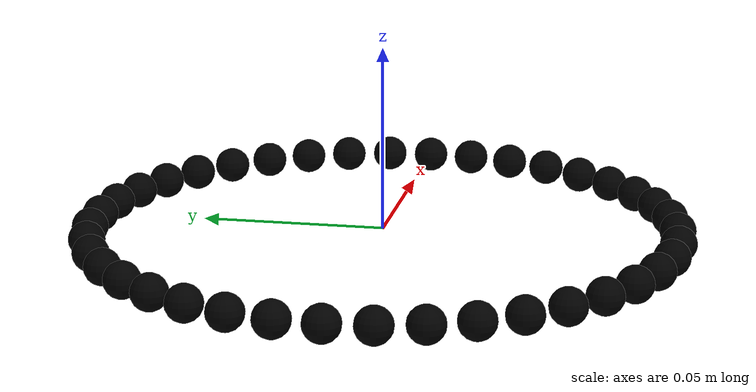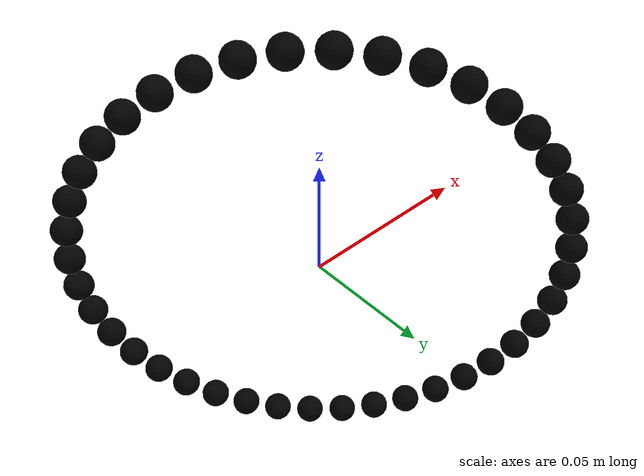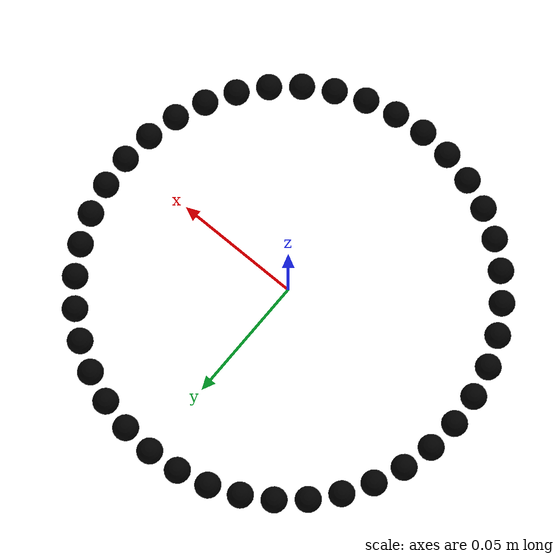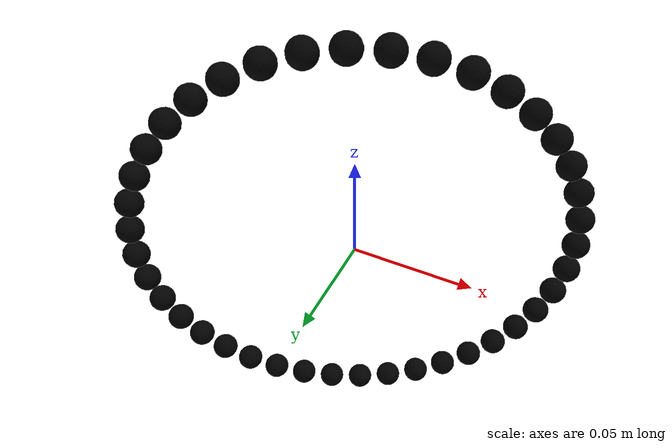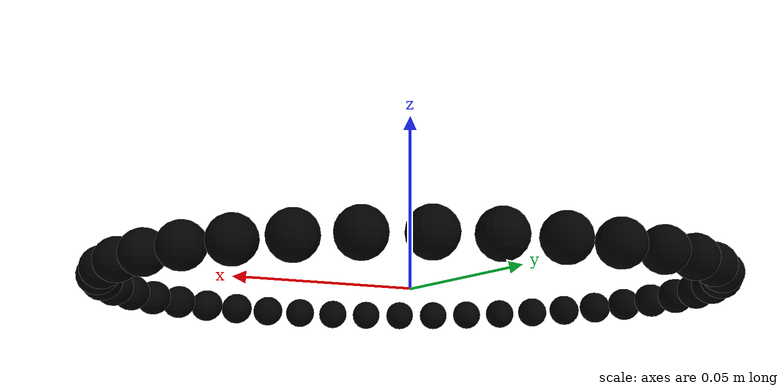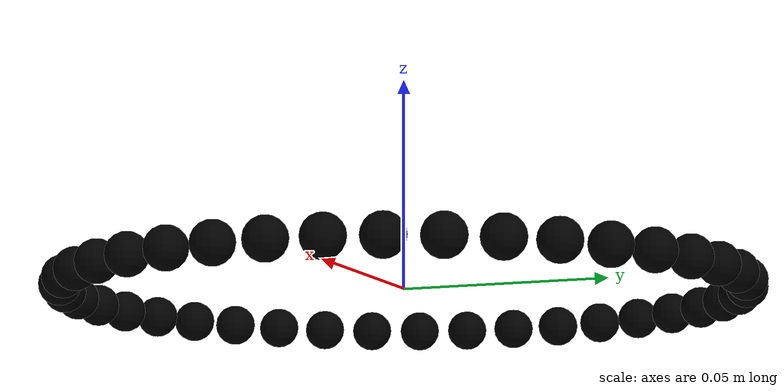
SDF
<?xml version="1.0"?>
<sdf version="1.5">
    <model name="led_strip">
        <static>true</static>
        <link name="led_0_link">
            <pose>0.0 0.08 0 0 0 0</pose>
            <visual name="led_0_visual">
                <cast_shadows>false</cast_shadows>
                <geometry><sphere><radius>0.005</radius></sphere></geometry>
                <material>
                    <ambient>0 0 0 1</ambient><diffuse>0 0 0 1</diffuse>
                    <specular>0 0 0 0</specular><emissive>0 0 0 1</emissive>
                </material>
            </visual>
        </link>
        <link name="led_1_link">
            <pose>0.01251475720321847 0.07901506724761102 0 0 0 0</pose>
            <visual name="led_1_visual">
                <cast_shadows>false</cast_shadows>
                <geometry><sphere><radius>0.005</radius></sphere></geometry>
                <material>
                    <ambient>0 0 0 1</ambient><diffuse>0 0 0 1</diffuse>
                    <specular>0 0 0 0</specular><emissive>0 0 0 1</emissive>
                </material>
            </visual>
        </link>
        <link name="led_2_link">
            <pose>0.024721359549995794 0.07608452130361229 0 0 0 0</pose>
            <visual name="led_2_visual">
                <cast_shadows>false</cast_shadows>
                <geometry><sphere><radius>0.005</radius></sphere></geometry>
                <material>
                    <ambient>0 0 0 1</ambient><diffuse>0 0 0 1</diffuse>
                    <specular>0 0 0 0</specular><emissive>0 0 0 1</emissive>
                </material>
            </visual>
        </link>
        <link name="led_3_link">
            <pose>0.03631923997916374 0.07128052193506944 0 0 0 0</pose>
            <visual name="led_3_visual">
                <cast_shadows>false</cast_shadows>
                <geometry><sphere><radius>0.005</radius></sphere></geometry>
                <material>
                    <ambient>0 0 0 1</ambient><diffuse>0 0 0 1</diffuse>
                    <specular>0 0 0 0</specular><emissive>0 0 0 1</emissive>
                </material>
            </visual>
        </link>
        <link name="led_4_link">
            <pose>0.04702282018339785 0.06472135954999579 0 0 0 0</pose>
            <visual name="led_4_visual">
                <cast_shadows>false</cast_shadows>
                <geometry><sphere><radius>0.005</radius></sphere></geometry>
                <material>
                    <ambient>0 0 0 1</ambient><diffuse>0 0 0 1</diffuse>
                    <specular>0 0 0 0</specular><emissive>0 0 0 1</emissive>
                </material>
            </visual>
        </link>
        <link name="led_5_link">
            <pose>0.056568542494923796 0.05656854249492381 0 0 0 0</pose>
            <visual name="led_5_visual">
                <cast_shadows>false</cast_shadows>
                <geometry><sphere><radius>0.005</radius></sphere></geometry>
                <material>
                    <ambient>0 0 0 1</ambient><diffuse>0 0 0 1</diffuse>
                    <specular>0 0 0 0</specular><emissive>0 0 0 1</emissive>
                </material>
            </visual>
        </link>
        <link name="led_6_link">
            <pose>0.06472135954999579 0.04702282018339786 0 0 0 0</pose>
            <visual name="led_6_visual">
                <cast_shadows>false</cast_shadows>
                <geometry><sphere><radius>0.005</radius></sphere></geometry>
                <material>
                    <ambient>0 0 0 1</ambient><diffuse>0 0 0 1</diffuse>
                    <specular>0 0 0 0</specular><emissive>0 0 0 1</emissive>
                </material>
            </visual>
        </link>
        <link name="led_7_link">
            <pose>0.07128052193506942 0.036319239979163746 0 0 0 0</pose>
            <visual name="led_7_visual">
                <cast_shadows>false</cast_shadows>
                <geometry><sphere><radius>0.005</radius></sphere></geometry>
                <material>
                    <ambient>0 0 0 1</ambient><diffuse>0 0 0 1</diffuse>
                    <specular>0 0 0 0</specular><emissive>0 0 0 1</emissive>
                </material>
            </visual>
        </link>
        <link name="led_8_link">
            <pose>0.07608452130361229 0.024721359549995797 0 0 0 0</pose>
            <visual name="led_8_visual">
                <cast_shadows>false</cast_shadows>
                <geometry><sphere><radius>0.005</radius></sphere></geometry>
                <material>
                    <ambient>0 0 0 1</ambient><diffuse>0 0 0 1</diffuse>
                    <specular>0 0 0 0</specular><emissive>0 0 0 1</emissive>
                </material>
            </visual>
        </link>
        <link name="led_9_link">
            <pose>0.07901506724761102 0.012514757203218475 0 0 0 0</pose>
            <visual name="led_9_visual">
                <cast_shadows>false</cast_shadows>
                <geometry><sphere><radius>0.005</radius></sphere></geometry>
                <material>
                    <ambient>0 0 0 1</ambient><diffuse>0 0 0 1</diffuse>
                    <specular>0 0 0 0</specular><emissive>0 0 0 1</emissive>
                </material>
            </visual>
        </link>
        <link name="led_10_link">
            <pose>0.08 4.898587196589413e-18 0 0 0 0</pose>
            <visual name="led_10_visual">
                <cast_shadows>false</cast_shadows>
                <geometry><sphere><radius>0.005</radius></sphere></geometry>
                <material>
                    <ambient>0 0 0 1</ambient><diffuse>0 0 0 1</diffuse>
                    <specular>0 0 0 0</specular><emissive>0 0 0 1</emissive>
                </material>
            </visual>
        </link>
        <link name="led_11_link">
            <pose>0.07901506724761102 -0.012514757203218466 0 0 0 0</pose>
            <visual name="led_11_visual">
                <cast_shadows>false</cast_shadows>
                <geometry><sphere><radius>0.005</radius></sphere></geometry>
                <material>
                    <ambient>0 0 0 1</ambient><diffuse>0 0 0 1</diffuse>
                    <specular>0 0 0 0</specular><emissive>0 0 0 1</emissive>
                </material>
            </visual>
        </link>
        <link name="led_12_link">
            <pose>0.07608452130361229 -0.024721359549995787 0 0 0 0</pose>
            <visual name="led_12_visual">
                <cast_shadows>false</cast_shadows>
                <geometry><sphere><radius>0.005</radius></sphere></geometry>
                <material>
                    <ambient>0 0 0 1</ambient><diffuse>0 0 0 1</diffuse>
                    <specular>0 0 0 0</specular><emissive>0 0 0 1</emissive>
                </material>
            </visual>
        </link>
        <link name="led_13_link">
            <pose>0.07128052193506944 -0.03631923997916374 0 0 0 0</pose>
            <visual name="led_13_visual">
                <cast_shadows>false</cast_shadows>
                <geometry><sphere><radius>0.005</radius></sphere></geometry>
                <material>
                    <ambient>0 0 0 1</ambient><diffuse>0 0 0 1</diffuse>
                    <specular>0 0 0 0</specular><emissive>0 0 0 1</emissive>
                </material>
            </visual>
        </link>
        <link name="led_14_link">
            <pose>0.06472135954999579 -0.047022820183397845 0 0 0 0</pose>
            <visual name="led_14_visual">
                <cast_shadows>false</cast_shadows>
                <geometry><sphere><radius>0.005</radius></sphere></geometry>
                <material>
                    <ambient>0 0 0 1</ambient><diffuse>0 0 0 1</diffuse>
                    <specular>0 0 0 0</specular><emissive>0 0 0 1</emissive>
                </material>
            </visual>
        </link>
        <link name="led_15_link">
            <pose>0.05656854249492381 -0.056568542494923796 0 0 0 0</pose>
            <visual name="led_15_visual">
                <cast_shadows>false</cast_shadows>
                <geometry><sphere><radius>0.005</radius></sphere></geometry>
                <material>
                    <ambient>0 0 0 1</ambient><diffuse>0 0 0 1</diffuse>
                    <specular>0 0 0 0</specular><emissive>0 0 0 1</emissive>
                </material>
            </visual>
        </link>
        <link name="led_16_link">
            <pose>0.04702282018339786 -0.06472135954999579 0 0 0 0</pose>
            <visual name="led_16_visual">
                <cast_shadows>false</cast_shadows>
                <geometry><sphere><radius>0.005</radius></sphere></geometry>
                <material>
                    <ambient>0 0 0 1</ambient><diffuse>0 0 0 1</diffuse>
                    <specular>0 0 0 0</specular><emissive>0 0 0 1</emissive>
                </material>
            </visual>
        </link>
        <link name="led_17_link">
            <pose>0.036319239979163746 -0.07128052193506942 0 0 0 0</pose>
            <visual name="led_17_visual">
                <cast_shadows>false</cast_shadows>
                <geometry><sphere><radius>0.005</radius></sphere></geometry>
                <material>
                    <ambient>0 0 0 1</ambient><diffuse>0 0 0 1</diffuse>
                    <specular>0 0 0 0</specular><emissive>0 0 0 1</emissive>
                </material>
            </visual>
        </link>
        <link name="led_18_link">
            <pose>0.0247213595499958 -0.07608452130361229 0 0 0 0</pose>
            <visual name="led_18_visual">
                <cast_shadows>false</cast_shadows>
                <geometry><sphere><radius>0.005</radius></sphere></geometry>
                <material>
                    <ambient>0 0 0 1</ambient><diffuse>0 0 0 1</diffuse>
                    <specular>0 0 0 0</specular><emissive>0 0 0 1</emissive>
                </material>
            </visual>
        </link>
        <link name="led_19_link">
            <pose>0.012514757203218478 -0.07901506724761101 0 0 0 0</pose>
            <visual name="led_19_visual">
                <cast_shadows>false</cast_shadows>
                <geometry><sphere><radius>0.005</radius></sphere></geometry>
                <material>
                    <ambient>0 0 0 1</ambient><diffuse>0 0 0 1</diffuse>
                    <specular>0 0 0 0</specular><emissive>0 0 0 1</emissive>
                </material>
            </visual>
        </link>
        <link name="led_20_link">
            <pose>9.797174393178826e-18 -0.08 0 0 0 0</pose>
            <visual name="led_20_visual">
                <cast_shadows>false</cast_shadows>
                <geometry><sphere><radius>0.005</radius></sphere></geometry>
                <material>
                    <ambient>0 0 0 1</ambient><diffuse>0 0 0 1</diffuse>
                    <specular>0 0 0 0</specular><emissive>0 0 0 1</emissive>
                </material>
            </visual>
        </link>
        <link name="led_21_link">
            <pose>-0.01251475720321846 -0.07901506724761102 0 0 0 0</pose>
            <visual name="led_21_visual">
                <cast_shadows>false</cast_shadows>
                <geometry><sphere><radius>0.005</radius></sphere></geometry>
                <material>
                    <ambient>0 0 0 1</ambient><diffuse>0 0 0 1</diffuse>
                    <specular>0 0 0 0</specular><emissive>0 0 0 1</emissive>
                </material>
            </visual>
        </link>
        <link name="led_22_link">
            <pose>-0.024721359549995783 -0.07608452130361229 0 0 0 0</pose>
            <visual name="led_22_visual">
                <cast_shadows>false</cast_shadows>
                <geometry><sphere><radius>0.005</radius></sphere></geometry>
                <material>
                    <ambient>0 0 0 1</ambient><diffuse>0 0 0 1</diffuse>
                    <specular>0 0 0 0</specular><emissive>0 0 0 1</emissive>
                </material>
            </visual>
        </link>
        <link name="led_23_link">
            <pose>-0.03631923997916374 -0.07128052193506944 0 0 0 0</pose>
            <visual name="led_23_visual">
                <cast_shadows>false</cast_shadows>
                <geometry><sphere><radius>0.005</radius></sphere></geometry>
                <material>
                    <ambient>0 0 0 1</ambient><diffuse>0 0 0 1</diffuse>
                    <specular>0 0 0 0</specular><emissive>0 0 0 1</emissive>
                </material>
            </visual>
        </link>
        <link name="led_24_link">
            <pose>-0.047022820183397845 -0.06472135954999579 0 0 0 0</pose>
            <visual name="led_24_visual">
                <cast_shadows>false</cast_shadows>
                <geometry><sphere><radius>0.005</radius></sphere></geometry>
                <material>
                    <ambient>0 0 0 1</ambient><diffuse>0 0 0 1</diffuse>
                    <specular>0 0 0 0</specular><emissive>0 0 0 1</emissive>
                </material>
            </visual>
        </link>
        <link name="led_25_link">
            <pose>-0.056568542494923796 -0.05656854249492382 0 0 0 0</pose>
            <visual name="led_25_visual">
                <cast_shadows>false</cast_shadows>
                <geometry><sphere><radius>0.005</radius></sphere></geometry>
                <material>
                    <ambient>0 0 0 1</ambient><diffuse>0 0 0 1</diffuse>
                    <specular>0 0 0 0</specular><emissive>0 0 0 1</emissive>
                </material>
            </visual>
        </link>
        <link name="led_26_link">
            <pose>-0.06472135954999579 -0.04702282018339786 0 0 0 0</pose>
            <visual name="led_26_visual">
                <cast_shadows>false</cast_shadows>
                <geometry><sphere><radius>0.005</radius></sphere></geometry>
                <material>
                    <ambient>0 0 0 1</ambient><diffuse>0 0 0 1</diffuse>
                    <specular>0 0 0 0</specular><emissive>0 0 0 1</emissive>
                </material>
            </visual>
        </link>
        <link name="led_27_link">
            <pose>-0.07128052193506942 -0.03631923997916375 0 0 0 0</pose>
            <visual name="led_27_visual">
                <cast_shadows>false</cast_shadows>
                <geometry><sphere><radius>0.005</radius></sphere></geometry>
                <material>
                    <ambient>0 0 0 1</ambient><diffuse>0 0 0 1</diffuse>
                    <specular>0 0 0 0</specular><emissive>0 0 0 1</emissive>
                </material>
            </visual>
        </link>
        <link name="led_28_link">
            <pose>-0.07608452130361229 -0.024721359549995804 0 0 0 0</pose>
            <visual name="led_28_visual">
                <cast_shadows>false</cast_shadows>
                <geometry><sphere><radius>0.005</radius></sphere></geometry>
                <material>
                    <ambient>0 0 0 1</ambient><diffuse>0 0 0 1</diffuse>
                    <specular>0 0 0 0</specular><emissive>0 0 0 1</emissive>
                </material>
            </visual>
        </link>
        <link name="led_29_link">
            <pose>-0.07901506724761101 -0.012514757203218485 0 0 0 0</pose>
            <visual name="led_29_visual">
                <cast_shadows>false</cast_shadows>
                <geometry><sphere><radius>0.005</radius></sphere></geometry>
                <material>
                    <ambient>0 0 0 1</ambient><diffuse>0 0 0 1</diffuse>
                    <specular>0 0 0 0</specular><emissive>0 0 0 1</emissive>
                </material>
            </visual>
        </link>
        <link name="led_30_link">
            <pose>-0.08 -1.4695761589768237e-17 0 0 0 0</pose>
            <visual name="led_30_visual">
                <cast_shadows>false</cast_shadows>
                <geometry><sphere><radius>0.005</radius></sphere></geometry>
                <material>
                    <ambient>0 0 0 1</ambient><diffuse>0 0 0 1</diffuse>
                    <specular>0 0 0 0</specular><emissive>0 0 0 1</emissive>
                </material>
            </visual>
        </link>
        <link name="led_31_link">
            <pose>-0.07901506724761102 0.012514757203218454 0 0 0 0</pose>
            <visual name="led_31_visual">
                <cast_shadows>false</cast_shadows>
                <geometry><sphere><radius>0.005</radius></sphere></geometry>
                <material>
                    <ambient>0 0 0 1</ambient><diffuse>0 0 0 1</diffuse>
                    <specular>0 0 0 0</specular><emissive>0 0 0 1</emissive>
                </material>
            </visual>
        </link>
        <link name="led_32_link">
            <pose>-0.07608452130361229 0.02472135954999578 0 0 0 0</pose>
            <visual name="led_32_visual">
                <cast_shadows>false</cast_shadows>
                <geometry><sphere><radius>0.005</radius></sphere></geometry>
                <material>
                    <ambient>0 0 0 1</ambient><diffuse>0 0 0 1</diffuse>
                    <specular>0 0 0 0</specular><emissive>0 0 0 1</emissive>
                </material>
            </visual>
        </link>
        <link name="led_33_link">
            <pose>-0.07128052193506944 0.03631923997916373 0 0 0 0</pose>
            <visual name="led_33_visual">
                <cast_shadows>false</cast_shadows>
                <geometry><sphere><radius>0.005</radius></sphere></geometry>
                <material>
                    <ambient>0 0 0 1</ambient><diffuse>0 0 0 1</diffuse>
                    <specular>0 0 0 0</specular><emissive>0 0 0 1</emissive>
                </material>
            </visual>
        </link>
        <link name="led_34_link">
            <pose>-0.0647213595499958 0.04702282018339783 0 0 0 0</pose>
            <visual name="led_34_visual">
                <cast_shadows>false</cast_shadows>
                <geometry><sphere><radius>0.005</radius></sphere></geometry>
                <material>
                    <ambient>0 0 0 1</ambient><diffuse>0 0 0 1</diffuse>
                    <specular>0 0 0 0</specular><emissive>0 0 0 1</emissive>
                </material>
            </visual>
        </link>
        <link name="led_35_link">
            <pose>-0.05656854249492382 0.056568542494923796 0 0 0 0</pose>
            <visual name="led_35_visual">
                <cast_shadows>false</cast_shadows>
                <geometry><sphere><radius>0.005</radius></sphere></geometry>
                <material>
                    <ambient>0 0 0 1</ambient><diffuse>0 0 0 1</diffuse>
                    <specular>0 0 0 0</specular><emissive>0 0 0 1</emissive>
                </material>
            </visual>
        </link>
        <link name="led_36_link">
            <pose>-0.04702282018339786 0.06472135954999579 0 0 0 0</pose>
            <visual name="led_36_visual">
                <cast_shadows>false</cast_shadows>
                <geometry><sphere><radius>0.005</radius></sphere></geometry>
                <material>
                    <ambient>0 0 0 1</ambient><diffuse>0 0 0 1</diffuse>
                    <specular>0 0 0 0</specular><emissive>0 0 0 1</emissive>
                </material>
            </visual>
        </link>
        <link name="led_37_link">
            <pose>-0.03631923997916376 0.07128052193506942 0 0 0 0</pose>
            <visual name="led_37_visual">
                <cast_shadows>false</cast_shadows>
                <geometry><sphere><radius>0.005</radius></sphere></geometry>
                <material>
                    <ambient>0 0 0 1</ambient><diffuse>0 0 0 1</diffuse>
                    <specular>0 0 0 0</specular><emissive>0 0 0 1</emissive>
                </material>
            </visual>
        </link>
        <link name="led_38_link">
            <pose>-0.02472135954999581 0.07608452130361229 0 0 0 0</pose>
            <visual name="led_38_visual">
                <cast_shadows>false</cast_shadows>
                <geometry><sphere><radius>0.005</radius></sphere></geometry>
                <material>
                    <ambient>0 0 0 1</ambient><diffuse>0 0 0 1</diffuse>
                    <specular>0 0 0 0</specular><emissive>0 0 0 1</emissive>
                </material>
            </visual>
        </link>
        <link name="led_39_link">
            <pose>-0.01251475720321849 0.07901506724761101 0 0 0 0</pose>
            <visual name="led_39_visual">
                <cast_shadows>false</cast_shadows>
                <geometry><sphere><radius>0.005</radius></sphere></geometry>
                <material>
                    <ambient>0 0 0 1</ambient><diffuse>0 0 0 1</diffuse>
                    <specular>0 0 0 0</specular><emissive>0 0 0 1</emissive>
                </material>
            </visual>
        </link>
    </model>
</sdf>
